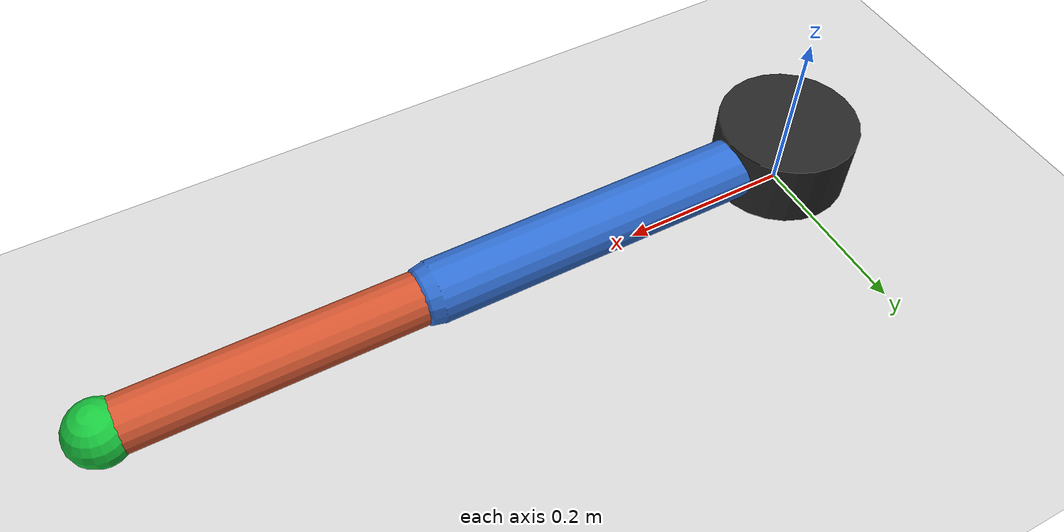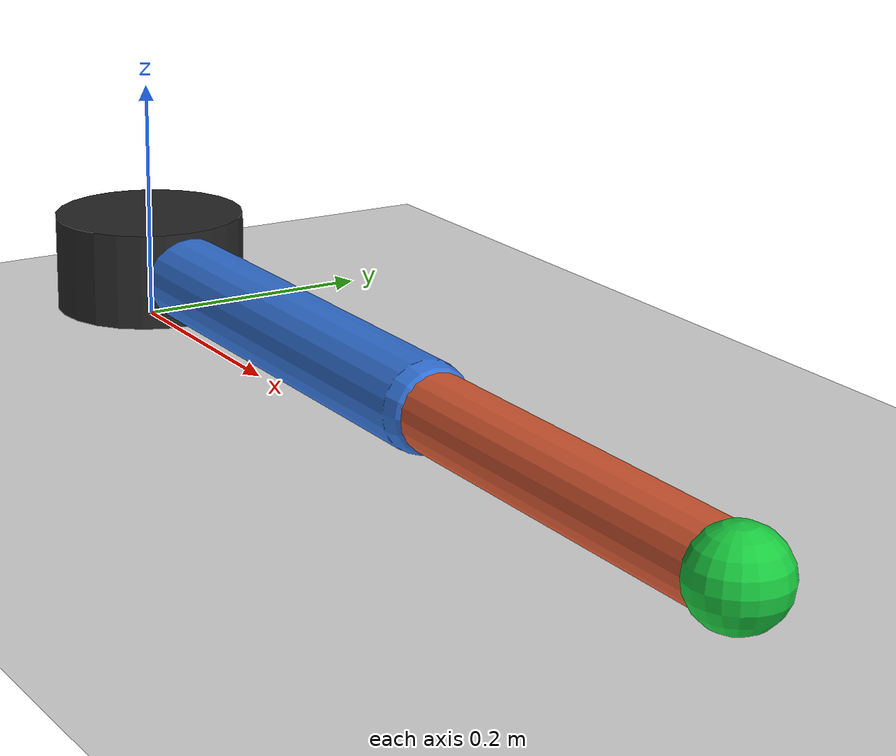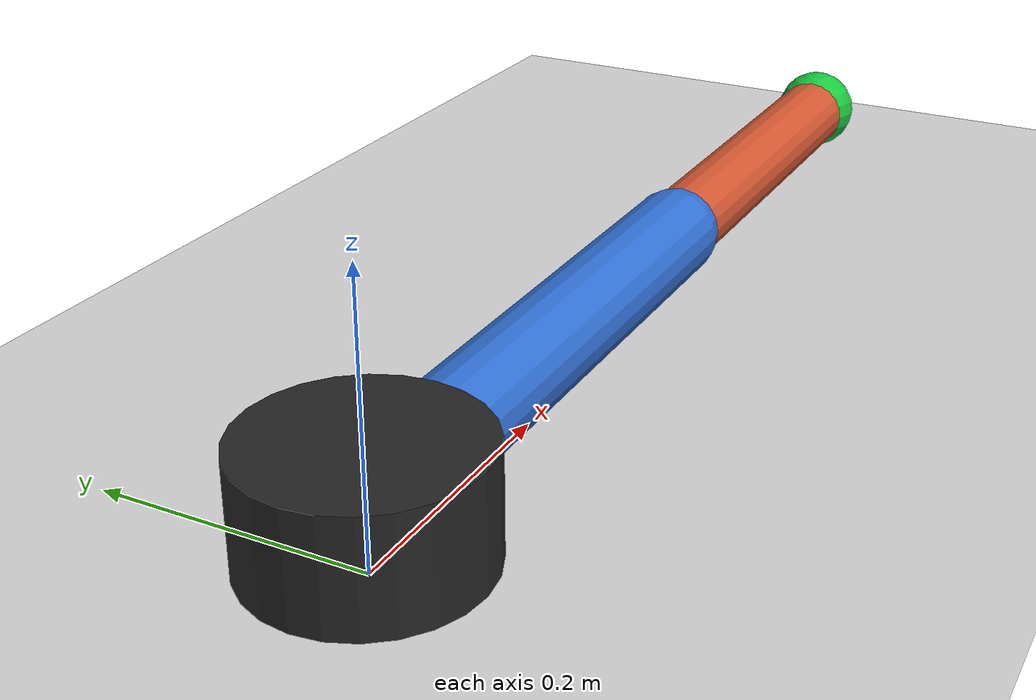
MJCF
<mujoco model="B02_two_link">
  <compiler angle="radian"/>

  <option timestep="0.01" gravity="0 0 -9.81"/>

  <default>
    <joint type="hinge" axis="0 0 1" damping="0.15" armature="0.02"/>
    <geom type="capsule" size="0.035" rgba="0.2 0.45 0.85 1"/>
    <motor ctrllimited="true" ctrlrange="-10 10"/>
  </default>

  <worldbody>
    <light name="key_light" pos="0 0 2.5" dir="0 0 -1"/>
    <geom name="ground" type="plane" pos="0 0 -0.04" size="1.5 1.5 0.02" rgba="0.85 0.85 0.85 1"/>

    <body name="base" pos="0 0 0.05">
      <geom name="base_geom" type="cylinder" size="0.08 0.04" rgba="0.15 0.15 0.15 1"/>

      <body name="link1" pos="0 0 0">
        <joint name="shoulder" range="-3.14 3.14"/>
        <geom name="link1_geom" fromto="0 0 0 0.45 0 0" size="0.035" rgba="0.2 0.45 0.85 1"/>

        <body name="link2" pos="0.45 0 0">
          <joint name="elbow" range="-3.14 3.14"/>
          <geom name="link2_geom" fromto="0 0 0 0.35 0 0" size="0.03" rgba="0.85 0.35 0.2 1"/>
          <site name="ee_site" pos="0.35 0 0" size="0.035" rgba="0.1 0.8 0.25 1"/>
        </body>
      </body>
    </body>

    <camera name="front" pos="0.45 -1.35 0.8" xyaxes="1 0 0 0 0.5 0.866"/>
  </worldbody>

  <actuator>
    <motor name="shoulder_motor" joint="shoulder" gear="1"/>
    <motor name="elbow_motor" joint="elbow" gear="1"/>
  </actuator>
</mujoco>
